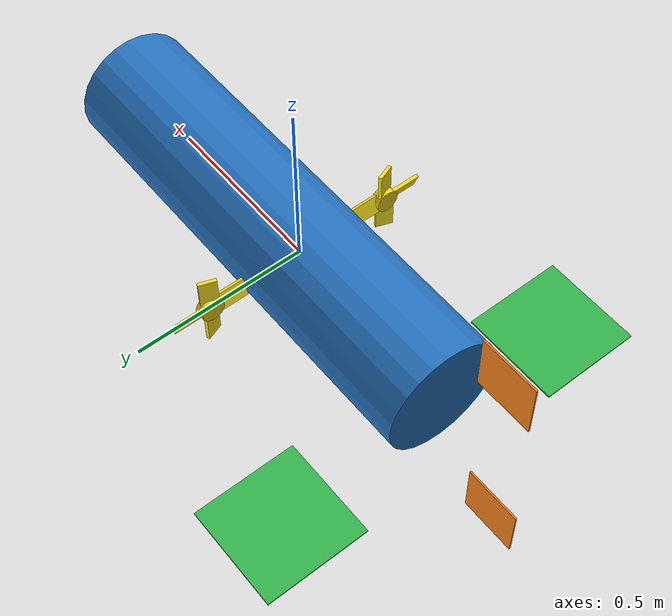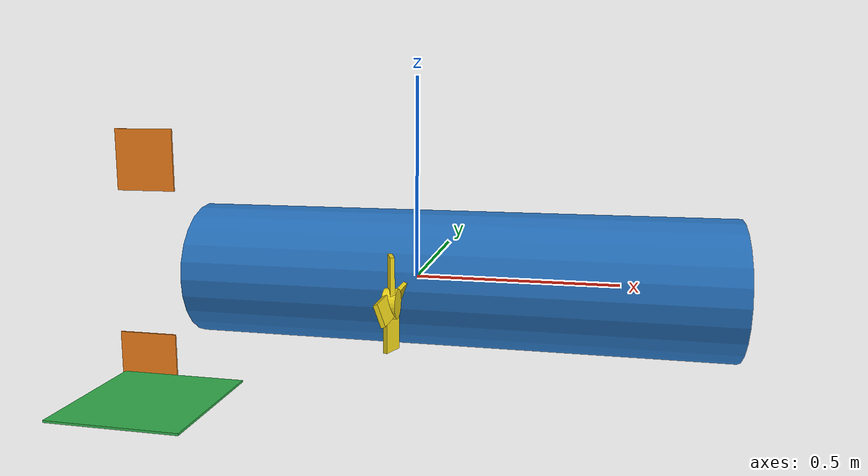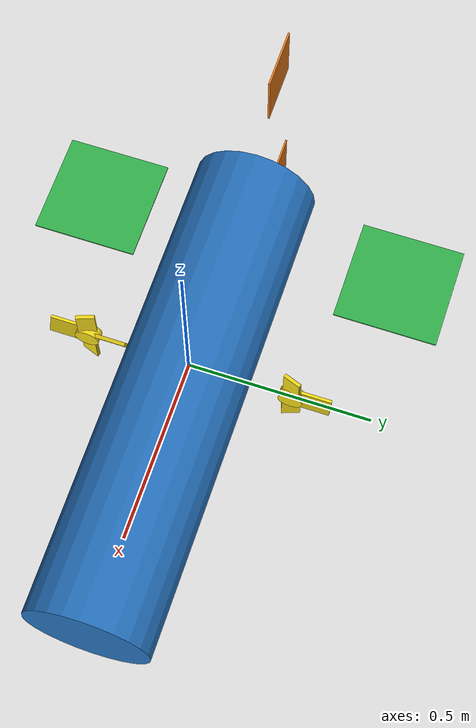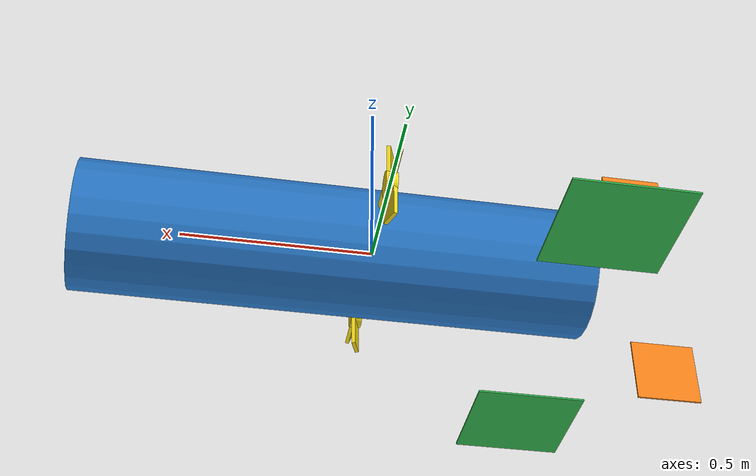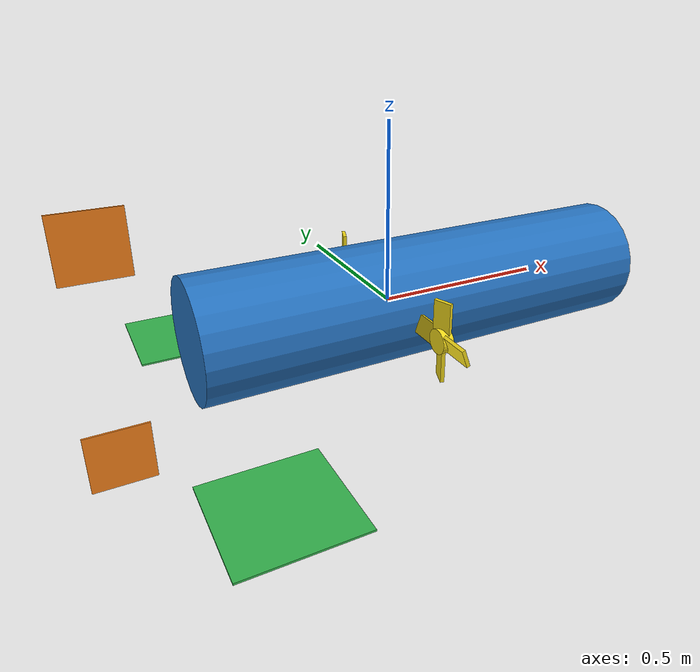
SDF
<?xml version="1.0" ?>
<sdf version="1.6">
  <model name="submarine_nb">
    <pose>0 0 0 0 0 0</pose>

    <!-- ===== КОРПУС ===== -->
    <link name="body">
      <pose>0.1 0 0 0 1.5707963267948966 0</pose>
      <inertial>
        <pose>0.2 0 0 0 0 0</pose>
        <mass>121.8</mass>
        <inertia>
          <ixx>18.33</ixx><iyy>18.33</iyy><izz>1.64</izz>
          <ixy>0</ixy><ixz>0</ixz><iyz>0</iyz>
        </inertia>
        <fluid_added_mass>
          <xx>116.0</xx><yy>116.0</yy><zz>5.8</zz>
          <pp>0.7</pp><qq>3.7</qq><rr>3.7</rr>
        </fluid_added_mass>
      </inertial>
      <visual name="body_visual">
        <geometry><cylinder><radius>0.17</radius><length>1.3333333</length></cylinder></geometry>
        <material><ambient>0.15 0.45 0.75 1</ambient><diffuse>0.15 0.45 0.75 1</diffuse><specular>0.15 0.45 0.75 1</specular></material>
      </visual>
      <collision name="body_collision">
        <geometry><cylinder><radius>0.17</radius><length>1.3333333</length></cylinder></geometry>
      </collision>
      <sensor name="imu_sensor" type="imu">
        <always_on>1</always_on><update_rate>100</update_rate>
        <topic>/model/submarine_nb/imu</topic>
      </sensor>
      <sensor name="pressure_sensor" type="air_pressure">
        <always_on>1</always_on><update_rate>50</update_rate>
        <topic>/sub_press</topic>
      </sensor>
      <sensor name="mag_sensor" type="magnetometer">
        <always_on>1</always_on><update_rate>50</update_rate>
        <topic>/model/submarine_nb/magnetometer</topic>
      </sensor>
      <sensor name="altimeter_sensor" type="gpu_lidar">
        <pose>0.17 0 0 0 0 0</pose>
        <always_on>1</always_on><update_rate>10</update_rate>
        <topic>/model/submarine_nb/altimeter</topic>
        <lidar>
          <scan><horizontal><samples>1</samples><resolution>1</resolution>
            <min_angle>0</min_angle><max_angle>0</max_angle></horizontal></scan>
          <range><min>0.3</min><max>100.0</max><resolution>0.01</resolution></range>
        </lidar>
      </sensor>
      <sensor name="sonar_sensor" type="gpu_lidar">
        <pose>0 0 0.75 0 -1.5707963 0</pose>
        <always_on>1</always_on><update_rate>10</update_rate>
        <topic>/model/submarine_nb/sonar</topic>
        <gz_frame_id>submarine_nb/body/sonar_sensor</gz_frame_id>
        <lidar>
          <scan>
            <horizontal><samples>16</samples><resolution>1</resolution>
              <min_angle>-0.349</min_angle><max_angle>0.349</max_angle></horizontal>
            <vertical><samples>16</samples><resolution>1</resolution>
              <min_angle>-0.349</min_angle><max_angle>0.349</max_angle></vertical>
          </scan>
          <range><min>0.5</min><max>50.0</max><resolution>0.01</resolution></range>
        </lidar>
      </sensor>
    </link>

    <!-- ===== ЛЕВЫЙ ПРОПЕЛЛЕР ===== -->
    <link name="left_propeller">
      <pose>0 0.2833333 0 0 1.5708 0</pose>
      <inertial>
        <mass>0.101</mass>
        <inertia><ixx>0.0000592</ixx><iyy>0.0000592</iyy><izz>0.000117</izz>
          <ixy>0</ixy><ixz>0</ixz><iyz>0</iyz></inertia>
      </inertial>
      <visual name="lp_cyl"><geometry><cylinder><radius>0.0333</radius><length>0.03</length></cylinder></geometry><material><ambient>0.95 0.85 0.10 1</ambient><diffuse>0.95 0.85 0.10 1</diffuse><specular>0.95 0.85 0.10 1</specular></material></visual>
      <visual name="lp_b1"><pose>0.057 0 0 -0.349066 0 0</pose><geometry><box><size>0.1 0.05 0.01</size></box></geometry><material><ambient>0.95 0.85 0.10 1</ambient><diffuse>0.95 0.85 0.10 1</diffuse><specular>0.95 0.85 0.10 1</specular></material></visual>
      <visual name="lp_b2"><pose>-0.057 0 0 0.349066 0 0</pose><geometry><box><size>0.1 0.05 0.01</size></box></geometry><material><ambient>0.95 0.85 0.10 1</ambient><diffuse>0.95 0.85 0.10 1</diffuse><specular>0.95 0.85 0.10 1</specular></material></visual>
      <visual name="lp_b3"><pose>0 0.057 0 0 -0.349066 0</pose><geometry><box><size>0.05 0.1 0.01</size></box></geometry><material><ambient>0.95 0.85 0.10 1</ambient><diffuse>0.95 0.85 0.10 1</diffuse><specular>0.95 0.85 0.10 1</specular></material></visual>
      <visual name="lp_b4"><pose>0 -0.057 0 0 0.349066 0</pose><geometry><box><size>0.05 0.1 0.01</size></box></geometry><material><ambient>0.95 0.85 0.10 1</ambient><diffuse>0.95 0.85 0.10 1</diffuse><specular>0.95 0.85 0.10 1</specular></material></visual>
      <collision name="lp_c1"><pose>0.057 0 0 -0.349066 0 0</pose><geometry><box><size>0.1 0.05 0.01</size></box></geometry></collision>
      <collision name="lp_c2"><pose>-0.057 0 0 0.349066 0 0</pose><geometry><box><size>0.1 0.05 0.01</size></box></geometry></collision>
      <collision name="lp_c3"><pose>0 0.057 0 0 -0.349066 0</pose><geometry><box><size>0.05 0.1 0.01</size></box></geometry></collision>
      <collision name="lp_c4"><pose>0 -0.057 0 0 0.349066 0</pose><geometry><box><size>0.05 0.1 0.01</size></box></geometry></collision>
    </link>
    <joint name="left_propeller_joint" type="revolute">
      <parent>body</parent><child>left_propeller</child>
      <axis><xyz>1 0 0</xyz><use_parent_model_frame>1</use_parent_model_frame>
        <limit><lower>-1e12</lower><upper>1e12</upper></limit>
        <dynamics><damping>0.5</damping></dynamics>
      </axis>
    </joint>
    <plugin filename="gz-sim-apply-joint-force-system" name="gz::sim::systems::ApplyJointForce">
      <joint_name>left_propeller_joint</joint_name>
    </plugin>
    <plugin filename="gz-sim-lift-drag-system" name="gz::sim::systems::LiftDrag"><air_density>1000</air_density><cla>1.2535816618911175</cla><cla_stall>-1.4326647564469914</cla_stall><cda>0.02</cda><cda_stall>1.4326647564469914</cda_stall><alpha_stall>1.396</alpha_stall><area>0.007677</area><upward>0 -0.7071067811865476 -0.7071067811865475</upward><forward>0 -0.7071067811865475 0.7071067811865476</forward><link_name>left_propeller</link_name><cp>0.05833 0 0</cp></plugin>
    <plugin filename="gz-sim-lift-drag-system" name="gz::sim::systems::LiftDrag"><air_density>1000</air_density><cla>1.2535816618911175</cla><cla_stall>-1.4326647564469914</cla_stall><cda>0.02</cda><cda_stall>1.4326647564469914</cda_stall><alpha_stall>1.396</alpha_stall><area>0.007677</area><upward>-0.7071067811865475 0 -0.7071067811865476</upward><forward>-0.7071067811865476 0 0.7071067811865475</forward><link_name>left_propeller</link_name><cp>0 -0.05833 0</cp></plugin>
    <plugin filename="gz-sim-lift-drag-system" name="gz::sim::systems::LiftDrag"><air_density>1000</air_density><cla>1.2535816618911175</cla><cla_stall>-1.4326647564469914</cla_stall><cda>0.02</cda><cda_stall>1.4326647564469914</cda_stall><alpha_stall>1.396</alpha_stall><area>0.007677</area><upward>0 0.7071067811865475 -0.7071067811865476</upward><forward>0 0.7071067811865476 0.7071067811865475</forward><link_name>left_propeller</link_name><cp>-0.05833 0 0</cp></plugin>
    <plugin filename="gz-sim-lift-drag-system" name="gz::sim::systems::LiftDrag"><air_density>1000</air_density><cla>1.2535816618911175</cla><cla_stall>-1.4326647564469914</cla_stall><cda>0.02</cda><cda_stall>1.4326647564469914</cda_stall><alpha_stall>1.396</alpha_stall><area>0.007677</area><upward>0.7071067811865476 0 -0.7071067811865475</upward><forward>0.7071067811865475 0 0.7071067811865476</forward><link_name>left_propeller</link_name><cp>0 0.05833 0</cp></plugin>

    <!-- ===== ПРАВЫЙ ПРОПЕЛЛЕР ===== -->
    <link name="right_propeller">
      <pose>0 -0.2833333 0 0 1.5708 0</pose>
      <inertial><mass>0.101</mass><inertia><ixx>0.0000592</ixx><iyy>0.0000592</iyy><izz>0.000117</izz><ixy>0</ixy><ixz>0</ixz><iyz>0</iyz></inertia></inertial>
      <visual name="rp_cyl"><geometry><cylinder><radius>0.0333</radius><length>0.03</length></cylinder></geometry><material><ambient>0.95 0.85 0.10 1</ambient><diffuse>0.95 0.85 0.10 1</diffuse><specular>0.95 0.85 0.10 1</specular></material></visual>
      <visual name="rp_b1"><pose>0.057 0 0 0.349066 0 0</pose><geometry><box><size>0.1 0.05 0.01</size></box></geometry><material><ambient>0.95 0.85 0.10 1</ambient><diffuse>0.95 0.85 0.10 1</diffuse><specular>0.95 0.85 0.10 1</specular></material></visual>
      <visual name="rp_b2"><pose>-0.057 0 0 -0.349066 0 0</pose><geometry><box><size>0.1 0.05 0.01</size></box></geometry><material><ambient>0.95 0.85 0.10 1</ambient><diffuse>0.95 0.85 0.10 1</diffuse><specular>0.95 0.85 0.10 1</specular></material></visual>
      <visual name="rp_b3"><pose>0 0.057 0 0 0.349066 0</pose><geometry><box><size>0.05 0.1 0.01</size></box></geometry><material><ambient>0.95 0.85 0.10 1</ambient><diffuse>0.95 0.85 0.10 1</diffuse><specular>0.95 0.85 0.10 1</specular></material></visual>
      <visual name="rp_b4"><pose>0 -0.057 0 0 -0.349066 0</pose><geometry><box><size>0.05 0.1 0.01</size></box></geometry><material><ambient>0.95 0.85 0.10 1</ambient><diffuse>0.95 0.85 0.10 1</diffuse><specular>0.95 0.85 0.10 1</specular></material></visual>
      <collision name="rp_c1"><pose>0.057 0 0 0.349066 0 0</pose><geometry><box><size>0.1 0.05 0.01</size></box></geometry></collision>
      <collision name="rp_c2"><pose>-0.057 0 0 -0.349066 0 0</pose><geometry><box><size>0.1 0.05 0.01</size></box></geometry></collision>
      <collision name="rp_c3"><pose>0 0.057 0 0 0.349066 0</pose><geometry><box><size>0.05 0.1 0.01</size></box></geometry></collision>
      <collision name="rp_c4"><pose>0 -0.057 0 0 -0.349066 0</pose><geometry><box><size>0.05 0.1 0.01</size></box></geometry></collision>
    </link>
    <joint name="right_propeller_joint" type="revolute">
      <parent>body</parent><child>right_propeller</child>
      <axis><xyz>-1 0 0</xyz><use_parent_model_frame>1</use_parent_model_frame>
        <limit><lower>-1e12</lower><upper>1e12</upper></limit>
        <dynamics><damping>0.5</damping></dynamics>
      </axis>
    </joint>
    <plugin filename="gz-sim-apply-joint-force-system" name="gz::sim::systems::ApplyJointForce"><joint_name>right_propeller_joint</joint_name></plugin>
    <plugin filename="gz-sim-lift-drag-system" name="gz::sim::systems::LiftDrag"><air_density>1000</air_density><cla>1.2535816618911175</cla><cla_stall>-1.4326647564469914</cla_stall><cda>0.02</cda><cda_stall>1.4326647564469914</cda_stall><alpha_stall>1.396</alpha_stall><area>0.007677</area><upward>0 0.7071067811865476 -0.7071067811865475</upward><forward>0 0.7071067811865475 0.7071067811865476</forward><link_name>right_propeller</link_name><cp>0.05833 0 0</cp></plugin>
    <plugin filename="gz-sim-lift-drag-system" name="gz::sim::systems::LiftDrag"><air_density>1000</air_density><cla>1.2535816618911175</cla><cla_stall>-1.4326647564469914</cla_stall><cda>0.02</cda><cda_stall>1.4326647564469914</cda_stall><alpha_stall>1.396</alpha_stall><area>0.007677</area><upward>0.7071067811865475 0 -0.7071067811865476</upward><forward>0.7071067811865476 0 0.7071067811865475</forward><link_name>right_propeller</link_name><cp>0 -0.05833 0</cp></plugin>
    <plugin filename="gz-sim-lift-drag-system" name="gz::sim::systems::LiftDrag"><air_density>1000</air_density><cla>1.2535816618911175</cla><cla_stall>-1.4326647564469914</cla_stall><cda>0.02</cda><cda_stall>1.4326647564469914</cda_stall><alpha_stall>1.396</alpha_stall><area>0.007677</area><upward>0 -0.7071067811865475 -0.7071067811865476</upward><forward>0 -0.7071067811865476 0.7071067811865475</forward><link_name>right_propeller</link_name><cp>-0.05833 0 0</cp></plugin>
    <plugin filename="gz-sim-lift-drag-system" name="gz::sim::systems::LiftDrag"><air_density>1000</air_density><cla>1.2535816618911175</cla><cla_stall>-1.4326647564469914</cla_stall><cda>0.02</cda><cda_stall>1.4326647564469914</cda_stall><alpha_stall>1.396</alpha_stall><area>0.007677</area><upward>-0.7071067811865476 0 -0.7071067811865475</upward><forward>-0.7071067811865475 0 0.7071067811865476</forward><link_name>right_propeller</link_name><cp>0 0.05833 0</cp></plugin>

    <!-- ===== РУЛИ ===== -->

    <!-- Горизонтальный правый руль -->
    <link name="horizontal_rudder_right">
      <pose>-0.5 0.45 -0.2 0 0 0</pose>
      <inertial>
        <mass>0.02315</mass>
        <inertia><ixx>0.00000129</ixx><iyy>0.00000129</iyy><izz>0.00000129</izz>
          <ixy>0</ixy><ixz>0</ixz><iyz>0</iyz></inertia>
      </inertial>
      <visual name="hrr_v">
        <geometry><box><size>0.3 0.3 0.005</size></box></geometry>
        <material><ambient>0.20 0.70 0.30 1</ambient><diffuse>0.20 0.70 0.30 1</diffuse><specular>0.20 0.70 0.30 1</specular></material>
      </visual>
      <collision name="hrr_c">
        <geometry><box><size>0.3 0.3 0.005</size></box></geometry>
      </collision>
    </link>
    <joint name="horizontal_rudder_right_joint" type="revolute">
      <parent>body</parent><child>horizontal_rudder_right</child>
      <axis>
        <xyz>0 1 0</xyz>
        <limit><lower>-0.785</lower><upper>0.785</upper><effort>10</effort><velocity>1.0</velocity></limit>
        <dynamics><damping>10.0</damping></dynamics>
      </axis>
    </joint>
    <plugin filename="gz-sim-joint-position-controller-system" name="gz::sim::systems::JointPositionController">
      <joint_name>horizontal_rudder_right_joint</joint_name>
      <topic>/model/submarine_nb/joint/horizontal_rudder_right/cmd_position</topic>
      <p_gain>10</p_gain>
    </plugin>
    <plugin filename="gz-sim-lift-drag-system" name="gz::sim::systems::LiftDrag">
      <air_density>1000</air_density>
      <link_name>horizontal_rudder_right</link_name>
      <area>0.014</area><cla>2.5</cla><cla_stall>-0.5</cla_stall>
      <cda>0.5</cda><cda_stall>1.5</cda_stall>
      <alpha_stall>1.2</alpha_stall><a0>0</a0>
      <upward>0 0 1</upward><forward>1 0 0</forward>
      <cp>0 0 0</cp>
    </plugin>

    <!-- Горизонтальный левый руль -->
    <link name="horizontal_rudder_left">
      <pose>-0.5 -0.45 -0.2 0 0 0</pose>
      <inertial>
        <mass>0.02315</mass>
        <inertia><ixx>0.00000129</ixx><iyy>0.00000129</iyy><izz>0.00000129</izz>
          <ixy>0</ixy><ixz>0</ixz><iyz>0</iyz></inertia>
      </inertial>
      <visual name="hrl_v">
        <geometry><box><size>0.3 0.3 0.005</size></box></geometry>
        <material><ambient>0.20 0.70 0.30 1</ambient><diffuse>0.20 0.70 0.30 1</diffuse><specular>0.20 0.70 0.30 1</specular></material>
      </visual>
      <collision name="hrl_c">
        <geometry><box><size>0.3 0.3 0.005</size></box></geometry>
      </collision>
    </link>
    <joint name="horizontal_rudder_left_joint" type="revolute">
      <parent>body</parent><child>horizontal_rudder_left</child>
      <axis>
        <xyz>0 1 0</xyz>
        <limit><lower>-0.785</lower><upper>0.785</upper><effort>10</effort><velocity>1.0</velocity></limit>
        <dynamics><damping>10.0</damping></dynamics>
      </axis>
    </joint>
    <plugin filename="gz-sim-joint-position-controller-system" name="gz::sim::systems::JointPositionController">
      <joint_name>horizontal_rudder_left_joint</joint_name>
      <topic>/model/submarine_nb/joint/horizontal_rudder_left/cmd_position</topic>
      <p_gain>10</p_gain>
    </plugin>
    <plugin filename="gz-sim-lift-drag-system" name="gz::sim::systems::LiftDrag">
      <air_density>1000</air_density>
      <link_name>horizontal_rudder_left</link_name>
      <area>0.014</area><cla>2.5</cla><cla_stall>-0.5</cla_stall>
      <cda>0.5</cda><cda_stall>1.5</cda_stall>
      <alpha_stall>1.2</alpha_stall><a0>0</a0>
      <upward>0 0 1</upward><forward>1 0 0</forward>
      <cp>0 0 0</cp>
    </plugin>

    <!-- Вертикальный руль -->
    <link name="vertical_rudder">
      <pose>-0.7666667 0 -0.2833333 1.5708 1.5708 0</pose>
      <inertial>
        <mass>0.02315</mass>
        <inertia><ixx>0.00000129</ixx><iyy>0.00000129</iyy><izz>0.00000129</izz>
          <ixy>0</ixy><ixz>0</ixz><iyz>0</iyz></inertia>
      </inertial>
      <visual name="vr_v">
        <geometry><box><size>0.1666667 0.1666667 0.005</size></box></geometry>
        <material><ambient>0.95 0.50 0.10 1</ambient><diffuse>0.95 0.50 0.10 1</diffuse><specular>0.95 0.50 0.10 1</specular></material>
      </visual>
      <collision name="vr_c">
        <geometry><box><size>0.0333333 0.0666667 0.005</size></box></geometry>
      </collision>
    </link>
    <joint name="vertical_rudder_joint" type="revolute">
      <parent>body</parent><child>vertical_rudder</child>
      <axis>
        <xyz>1 0 0</xyz>
        <limit><lower>-0.785</lower><upper>0.785</upper><effort>10</effort><velocity>1.0</velocity></limit>
        <dynamics><damping>3.0</damping></dynamics>
      </axis>
    </joint>
    <plugin filename="gz-sim-joint-position-controller-system" name="gz::sim::systems::JointPositionController">
      <joint_name>vertical_rudder_joint</joint_name>
      <topic>/model/submarine_nb/joint/vertical_rudder/cmd_position</topic>
      <p_gain>10</p_gain>
    </plugin>
    <plugin filename="gz-sim-lift-drag-system" name="gz::sim::systems::LiftDrag">
      <air_density>1000</air_density>
      <link_name>vertical_rudder</link_name>
      <area>0.028</area><cla>2.5</cla><cla_stall>-0.5</cla_stall>
      <cda>0.02</cda><cda_stall>1.0</cda_stall>
      <alpha_stall>0.2</alpha_stall><a0>0</a0>
      <upward>0 0 1</upward><forward>0 1 0</forward>
      <cp>0 0 0</cp>
    </plugin>

    <!-- Вертикальный руль ВЕРХНИЙ (кормовой, для стабилизации крена) -->
    <link name="vertical_rudder_top">
      <pose>-0.75 0 0.2833333 1.5708 1.5708 0</pose>
      <inertial>
        <mass>0.02315</mass>
        <inertia><ixx>0.00000129</ixx><iyy>0.00000129</iyy><izz>0.00000129</izz>
          <ixy>0</ixy><ixz>0</ixz><iyz>0</iyz></inertia>
      </inertial>
      <visual name="vrt_v">
        <geometry><box><size>0.1666667 0.1666667 0.005</size></box></geometry>
        <material><ambient>0.95 0.50 0.10 1</ambient><diffuse>0.95 0.50 0.10 1</diffuse><specular>0.95 0.50 0.10 1</specular></material>
      </visual>
      <collision name="vrt_c">
        <geometry><box><size>0.0333333 0.0666667 0.005</size></box></geometry>
      </collision>
    </link>
    <joint name="vertical_rudder_top_joint" type="revolute">
      <parent>body</parent><child>vertical_rudder_top</child>
      <axis>
        <xyz>1 0 0</xyz>
        <limit><lower>-0.785</lower><upper>0.785</upper><effort>10</effort><velocity>1.0</velocity></limit>
        <dynamics><damping>3.0</damping></dynamics>
      </axis>
    </joint>
    <plugin filename="gz-sim-joint-position-controller-system" name="gz::sim::systems::JointPositionController">
      <joint_name>vertical_rudder_top_joint</joint_name>
      <topic>/model/submarine_nb/joint/vertical_rudder_top/cmd_position</topic>
      <p_gain>10</p_gain>
    </plugin>
    <plugin filename="gz-sim-lift-drag-system" name="gz::sim::systems::LiftDrag">
      <air_density>1000</air_density>
      <link_name>vertical_rudder_top</link_name>
      <area>0.028</area><cla>2.5</cla><cla_stall>-0.5</cla_stall>
      <cda>0.02</cda><cda_stall>1.0</cda_stall>
      <alpha_stall>0.2</alpha_stall><a0>0</a0>
      <upward>0 0 1</upward><forward>0 1 0</forward>
      <cp>0 0 0</cp>
    </plugin>

    <!-- ===== БАЛЛАСТЫ ===== -->
<!-- ===== СИСТЕМНЫЕ ПЛАГИНЫ ===== -->
    <plugin filename="gz-sim-odometry-publisher-system" name="gz::sim::systems::OdometryPublisher">
      <odom_frame>world</odom_frame>
      <robot_base_frame>submarine_nb/body</robot_base_frame>
      <odom_topic>/model/submarine_nb/odometry</odom_topic>
      <tf_topic>/model/submarine_nb/tf</tf_topic>
      <dimensions>3</dimensions>
      <odom_publish_frequency>50</odom_publish_frequency>
    </plugin>

    <plugin filename="gz-sim-hydrodynamics-system" name="gz::sim::systems::Hydrodynamics">
      <link_name>body</link_name>
      <xU>-4.0</xU><xUabsU>-44.0</xUabsU>
      <yV>-15.0</yV><yVabsV>-250.0</yVabsV>
      <zW>-15.0</zW><zWabsW>-250.0</zWabsW>
      <kP>-5.0</kP><kPabsP>-100.0</kPabsP>
      <mQ>-5.0</mQ><mQabsQ>-100.0</mQabsQ>
      <nR>-5.0</nR><nRabsR>-100.0</nRabsR>
    </plugin>

    <plugin filename="gz-sim-hydrodynamics-system" name="gz::sim::systems::Hydrodynamics">
      <link_name>horizontal_rudder_right</link_name>
      <xU>-0.2</xU><xUabsU>-0.5</xUabsU>
      <yV>-0.4</yV><yVabsV>-1.0</yVabsV>
      <zW>-0.4</zW><zWabsW>-1.0</zWabsW>
      <kP>-0.02</kP><kPabsP>-0.05</kPabsP>
      <mQ>-0.02</mQ><mQabsQ>-0.05</mQabsQ>
      <nR>-0.02</nR><nRabsR>-0.05</nRabsR>
    </plugin>

    <plugin filename="gz-sim-hydrodynamics-system" name="gz::sim::systems::Hydrodynamics">
      <link_name>horizontal_rudder_left</link_name>
      <xU>-0.2</xU><xUabsU>-0.5</xUabsU>
      <yV>-0.4</yV><yVabsV>-1.0</yVabsV>
      <zW>-0.4</zW><zWabsW>-1.0</zWabsW>
      <kP>-0.02</kP><kPabsP>-0.05</kPabsP>
      <mQ>-0.02</mQ><mQabsQ>-0.05</mQabsQ>
      <nR>-0.02</nR><nRabsR>-0.05</nRabsR>
    </plugin>

    <plugin filename="gz-sim-hydrodynamics-system" name="gz::sim::systems::Hydrodynamics">
      <link_name>vertical_rudder</link_name>
      <xU>-0.2</xU><xUabsU>-0.5</xUabsU>
      <yV>-0.4</yV><yVabsV>-1.0</yVabsV>
      <zW>-0.4</zW><zWabsW>-1.0</zWabsW>
      <kP>-0.02</kP><kPabsP>-0.05</kPabsP>
      <mQ>-0.02</mQ><mQabsQ>-0.05</mQabsQ>
      <nR>-0.02</nR><nRabsR>-0.05</nRabsR>
    </plugin>

    <plugin filename="gz-sim-hydrodynamics-system" name="gz::sim::systems::Hydrodynamics">
      <link_name>vertical_rudder_top</link_name>
      <xU>-0.2</xU><xUabsU>-0.5</xUabsU>
      <yV>-0.4</yV><yVabsV>-1.0</yVabsV>
      <zW>-0.4</zW><zWabsW>-1.0</zWabsW>
      <kP>-0.02</kP><kPabsP>-0.05</kPabsP>
      <mQ>-0.02</mQ><mQabsQ>-0.05</mQabsQ>
      <nR>-0.02</nR><nRabsR>-0.05</nRabsR>
    </plugin>

  </model>
</sdf>
